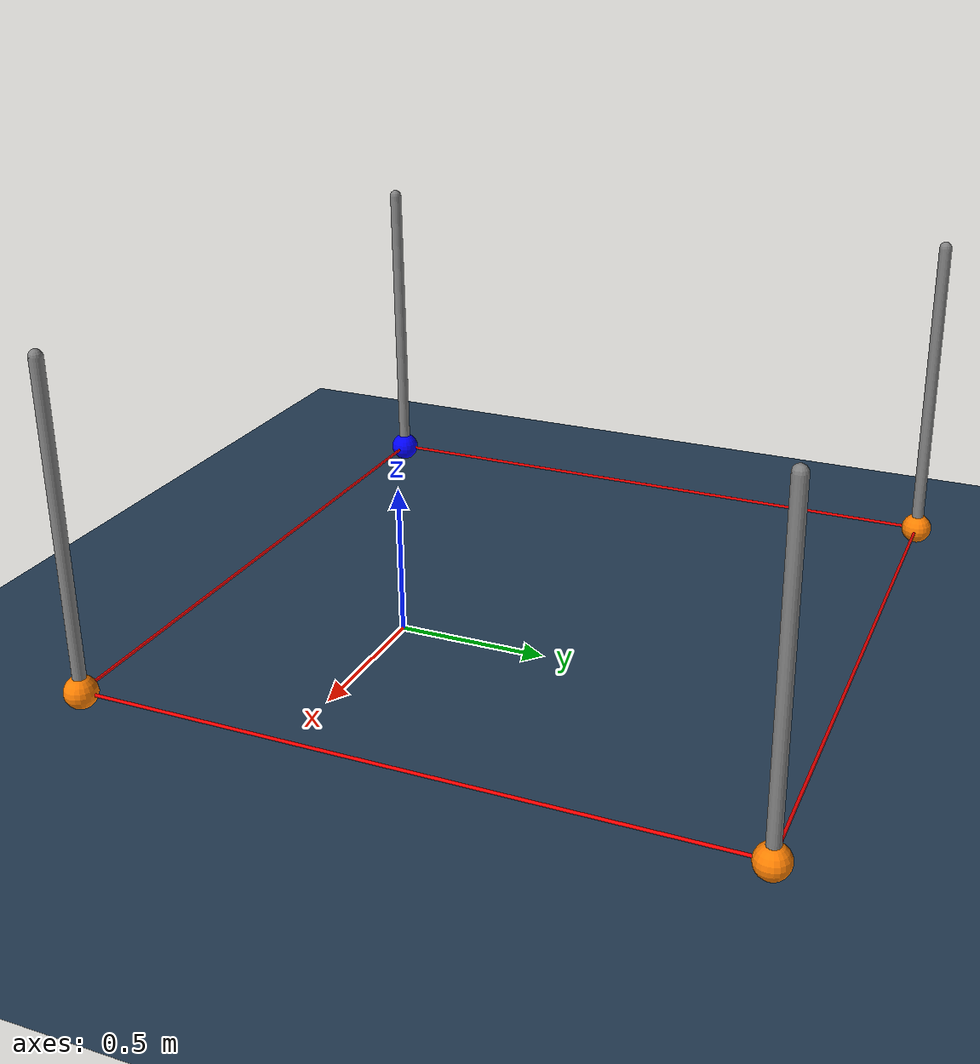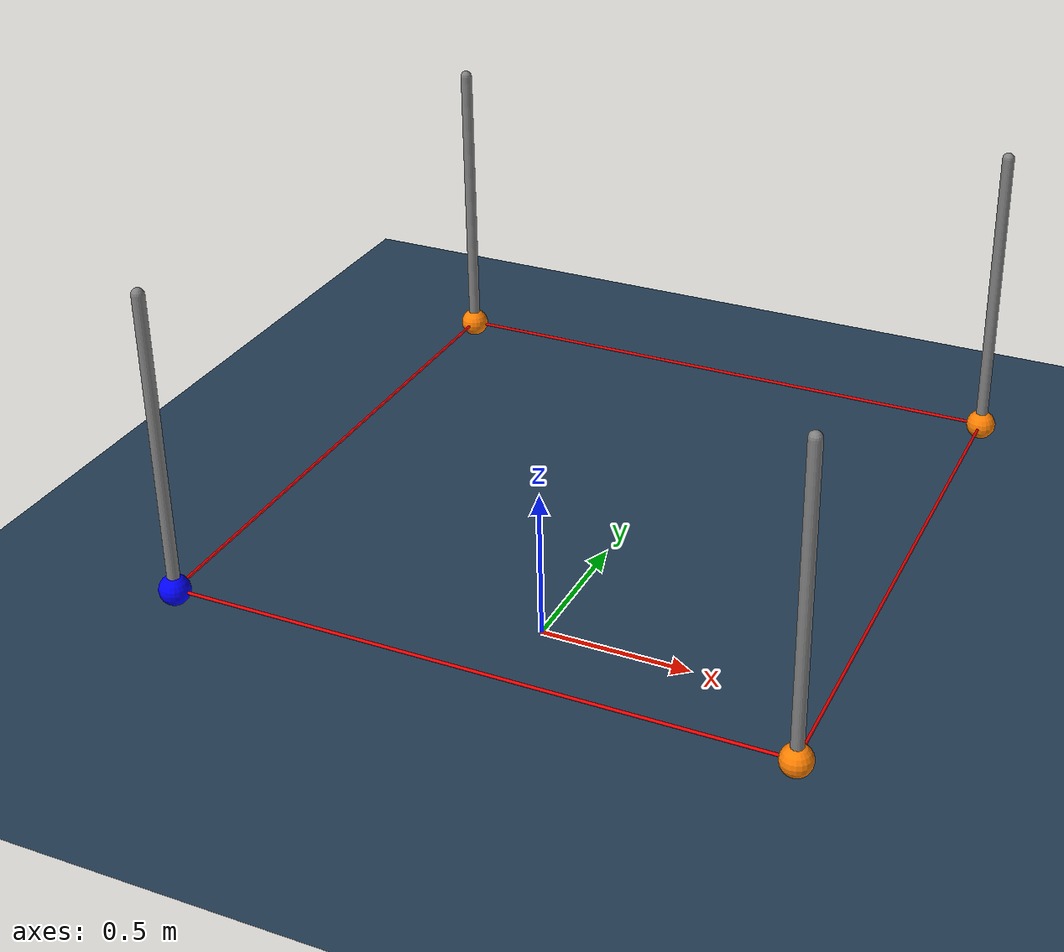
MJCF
<mujoco model="pendulomata">

    <option integrator="implicitfast" timestep="0.01" gravity="0 0 -9.81"/>

    <asset>
        <texture type="skybox" builtin="gradient" rgb1="0.6 0.7 0.9" rgb2="0.3 0.3 0.4" width="512" height="3072"/>
        <texture type="2d" name="groundplane" builtin="checker" mark="edge" rgb1="0.2 0.3 0.4" rgb2="0.1 0.2 0.3" markrgb="0.8 0.8 0.8" width="300" height="300"/>
        <material name="groundplane" texture="groundplane" texuniform="true" texrepeat="5 5" reflectance="0.2"/>
    </asset>

    <worldbody>
        <light name="global_light" directional="true" diffuse="1 1 1" specular="0.3 0.3 0.3" castshadow="false"/>
        <light name="fill_light_0" pos="-5 0 10" dir="0 0 -1" directional="false" diffuse="1 1 1" specular="0.2 0.2 0.2"/>
        <light name="fill_light_1" pos="0 0 10" dir="0 0 -1" directional="false" diffuse="1 1 1" specular="0.2 0.2 0.2"/>
        <light name="fill_light_2" pos="5 0 10" dir="0 0 -1" directional="false" diffuse="1 1 1" specular="0.2 0.2 0.2"/>

        <geom name="floor" pos="0 0 0" size="0 0 0.05" type="plane" material="groundplane"/>

        <!-- Pendulum base -->
        <body name="pendulum:0" pos="-1.0 -0.5 1.2">
            <joint name="ball:0" type="ball" pos="0 0 0" damping="0.1"/>

            <!-- Rod of the pendulum -->
            <geom name="rod:0" type="capsule" fromto="0 0 0 0 0 -1" size="0.02" mass="1" contype="1" conaffinity="2"/>

            <!-- Mass at the end -->
            <geom name="bob:0" type="sphere" pos="0 0 -1" size="0.05" rgba="0 0 1 1" mass="0" contype="1" conaffinity="2"/>

            <site name="site:0" pos="0 0 -1" size="0.01"/>
        </body>

        <body name="pendulum:1" pos="1.0 -0.5 1.2">
            <joint name="ball:1" type="ball" pos="0 0 0" damping="0.1"/>

            <geom name="rod:1" type="capsule" fromto="0 0 0 0 0 -1" size="0.02" mass="1" contype="1" conaffinity="2"/>

            <geom name="bob:1" type="sphere" pos="0 0 -1" size="0.05" rgba="1 0.5 0 1" mass="0" contype="1" conaffinity="2"/>

            <site name="site:1" pos="0 0 -1" size="0.01"/>
        </body>

        <body name="pendulum:2" pos="-1.0 1.5 1.2">
            <joint name="ball:2" type="ball" pos="0 0 0" damping="0.1"/>

            <geom name="rod:2" type="capsule" fromto="0 0 0 0 0 -1" size="0.02" mass="1" contype="1" conaffinity="2"/>

            <geom name="bob:2" type="sphere" pos="0 0 -1" size="0.05" rgba="1 0.5 0 1" mass="0" contype="1" conaffinity="2"/>

            <site name="site:2" pos="0 0 -1" size="0.01"/>
        </body>

        <body name="pendulum:3" pos="1.0 1.5 1.2">
            <joint name="ball:3" type="ball" pos="0 0 0" damping="0.1"/>

            <geom name="rod:3" type="capsule" fromto="0 0 0 0 0 -1" size="0.02" mass="1" contype="1" conaffinity="2"/>

            <geom name="bob:3" type="sphere" pos="0 0 -1" size="0.05" rgba="1 0.5 0 1" mass="0" contype="1" conaffinity="2"/>

            <site name="site:3" pos="0 0 -1" size="0.01"/>
        </body>

    </worldbody>

    <tendon>
        <spatial name="spring_0_1" stiffness="3.0" damping="0.1" springlength="2" rgba="1 0 0 1" width="0.005">
            <site site="site:0"/>
            <site site="site:1"/>
        </spatial>

        <spatial name="spring_0_2" stiffness="3.0" damping="0.1" springlength="2" rgba="1 0 0 1" width="0.005">
            <site site="site:0"/>
            <site site="site:2"/>
        </spatial>

        <spatial name="spring_1_3" stiffness="3.0" damping="0.1" springlength="2" rgba="1 0 0 1" width="0.005">
            <site site="site:1"/>
            <site site="site:3"/>
        </spatial>

        <spatial name="spring_2_3" stiffness="3.0" damping="0.1" springlength="2" rgba="1 0 0 1" width="0.005">
            <site site="site:2"/>
            <site site="site:3"/>
        </spatial>
    </tendon>

    <actuator>
        <motor joint="ball:0" gear="1 0 0"/>
        <motor joint="ball:0" gear="0 1 0"/>

        <motor joint="ball:1" gear="1 0 0"/>
        <motor joint="ball:1" gear="0 1 0"/>

        <motor joint="ball:2" gear="1 0 0"/>
        <motor joint="ball:2" gear="0 1 0"/>

        <motor joint="ball:3" gear="1 0 0"/>
        <motor joint="ball:3" gear="0 1 0"/>
    </actuator>
</mujoco>
